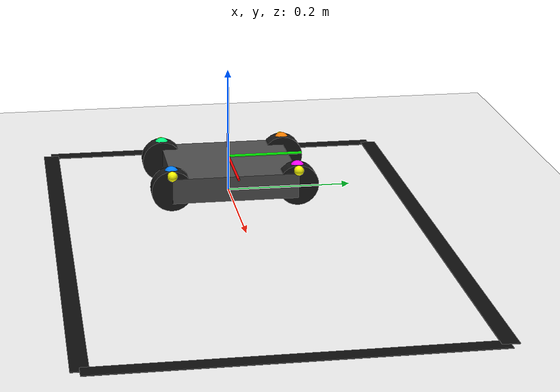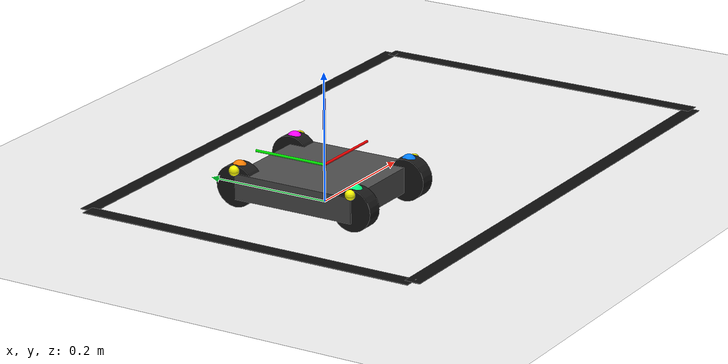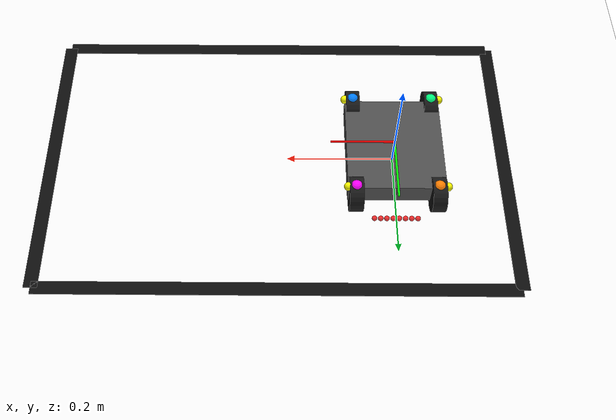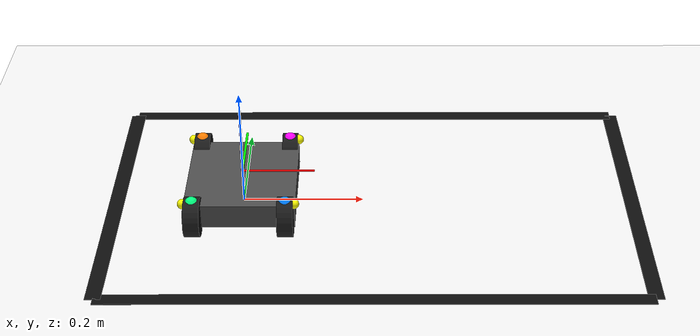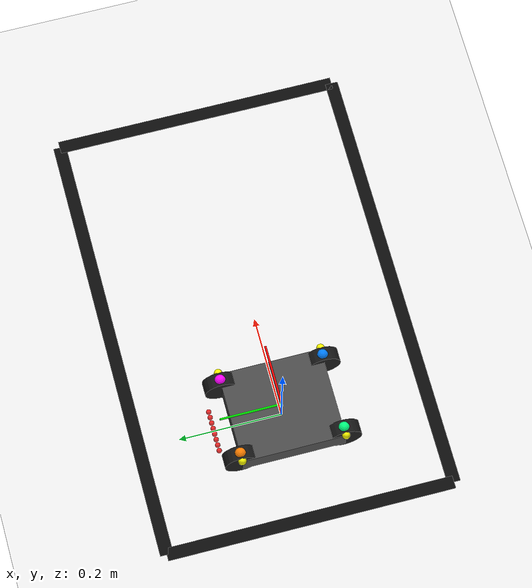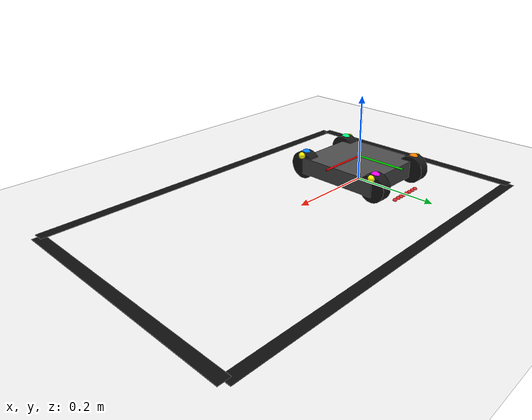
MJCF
<mujoco model="line_follower_simulation">
  <compiler angle="degree" coordinate="local" inertiafromgeom="true"/>

  <option timestep="0.002" integrator="implicitfast" gravity="0 0 -9.81" iterations="50" tolerance="1e-10">
    <flag warmstart="enable" contact="enable"/>
  </option>

  <default>
    <joint damping="0.5" armature="0.01"/>
    <geom contype="1" conaffinity="1" condim="3" solref="0.002 1" solimp="0.9 0.95 0.001"/>
  </default>

  <visual>
    <headlight diffuse="0.6 0.6 0.6" ambient="0.3 0.3 0.3" specular="0 0 0"/>
    <rgba haze="0.15 0.25 0.35 1"/>
    <global offwidth="640" offheight="480"/>
    <quality shadowsize="2048"/>
    <map fogstart="3" fogend="5" force="0.1"/>
  </visual>

  <asset>
    <texture name="grid" type="2d" builtin="checker" width="512" height="512"
             rgb1="0.2 0.2 0.2" rgb2="0.3 0.3 0.3"/>
    <material name="grid" texture="grid" texrepeat="1 1" texuniform="true"
              reflectance="0.1"/>
  </asset>

  <worldbody>
    <light directional="true" diffuse="0.8 0.8 0.8" specular="0.2 0.2 0.2"
           pos="0 0 5" dir="0 0 -1"/>
    <light directional="true" diffuse="0.4 0.4 0.4" specular="0.1 0.1 0.1"
           pos="2 2 3" dir="-1 -1 -1"/>
  </worldbody>

  <!-- Include track -->
  <include file="track.xml"/>

  <!-- Include robot -->
  <include file="robot.xml"/>
</mujoco>

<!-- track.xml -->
<mujoco model="track">
  <!--
  Black line track for differential drive robot
  Generated from waypoints - rectangular track with black tape
  Scale: 5x original size for robot compatibility
  -->

  <worldbody>
    <!-- Ground plane -->
    <geom name="floor" type="plane" size="1.5 1.5 0.1"
          rgba="0.95 0.95 0.95 1" friction="1.0 0.005 0.0001"/>

    <!-- Black track segments - scaled 5x -->
    <geom name="track_seg_0" type="box"
          pos="0.6505 0.0000 0.0005"
          size="0.2775 0.0125 0.0005"
          euler="0 0 90"
          rgba="0.05 0.05 0.05 1"/>
    <geom name="track_seg_1" type="box"
          pos="0.2190 0.2775 0.0005"
          size="0.4315 0.0125 0.0005"
          euler="0 0 180"
          rgba="0.05 0.05 0.05 1"/>
    <geom name="track_seg_2" type="box"
          pos="-0.2125 0.0000 0.0005"
          size="0.2775 0.0125 0.0005"
          euler="0 0 -90"
          rgba="0.05 0.05 0.05 1"/>
    <geom name="track_seg_3" type="box"
          pos="0.2190 -0.2775 0.0005"
          size="0.4315 0.0125 0.0005"
          euler="0 0 0"
          rgba="0.05 0.05 0.05 1"/>
  </worldbody>
</mujoco>

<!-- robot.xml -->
<mujoco model="differential_drive_robot">

  <worldbody>
    <!-- Chassis: position at z=0.0325 so chassis center is at wheel radius height -->
    <body name="chassis" pos="0 0 0.0325">
      <!-- Free joint - REQUIRED for robot to move -->
      <freejoint name="root"/>

      <!-- Main chassis box: 200mm x 180mm x 40mm, mass 380g -->
      <geom name="chassis_box" type="box" size="0.090 0.100 0.020"
            mass="0.380" rgba="0.3 0.3 0.3 1"/>

      <!-- Inertial properties -->
      <inertial pos="0 0 0" mass="0.380"
                diaginertia="8e-4 1.2e-3 1.5e-3"/>

      <!-- IR sensor sites: 8 channels, mounted at FRONT of robot -->
      <!-- User coordinates (mm): x=lateral, y=forward (132.1mm), relative to chassis center -->
      <!-- Robot frame: +Y is forward (vehicle heading direction) -->
      <!-- Conversion: user_x -> robot_x (lateral), user_y -> robot_y (forward) -->
      <site name="ir0" pos=" 0.0056944 0.1321 -0.0325" size="0.005" rgba="1 0 0 0.8"/>
      <site name="ir1" pos=" 0.0170831 0.1321 -0.0325" size="0.005" rgba="1 0 0 0.8"/>
      <site name="ir2" pos=" 0.0284719 0.1321 -0.0325" size="0.005" rgba="1 0 0 0.8"/>
      <site name="ir3" pos=" 0.0398606 0.1321 -0.0325" size="0.005" rgba="1 0 0 0.8"/>
      <site name="ir4" pos="-0.0056944 0.1321 -0.0325" size="0.005" rgba="1 0 0 0.8"/>
      <site name="ir5" pos="-0.0170831 0.1321 -0.0325" size="0.005" rgba="1 0 0 0.8"/>
      <site name="ir6" pos="-0.0284719 0.1321 -0.0325" size="0.005" rgba="1 0 0 0.8"/>
      <site name="ir7" pos="-0.0398606 0.1321 -0.0325" size="0.005" rgba="1 0 0 0.8"/>

      <!-- IMU site: at chassis center -->
      <site name="imu_site" pos="0 0 0" size="0.005" rgba="0 0 1 0.5"/>

      <!-- Chassis coordinate frame visualization - on top of chassis -->
      <!-- Chassis is 40mm tall (±20mm), so top surface is at z=0.020 -->
      <site name="chassis_x_axis" type="cylinder" size="0.002 0.06" pos="0.06 0 0.025" euler="0 90 0" rgba="1 0 0 0.9"/>
      <site name="chassis_y_axis" type="cylinder" size="0.002 0.06" pos="0 0.06 0.025" euler="90 0 0" rgba="0 1 0 0.9"/>
      <site name="chassis_z_axis" type="cylinder" size="0.002 0.06" pos="0 0 0.08" euler="0 0 0" rgba="0 0 1 0.9"/>

      <!-- Motor number labels near each wheel on chassis top surface -->
      <!-- M1 = wheel_lf (X=-0.075, Y=+0.100) - LEFT FRONT - orange -->
      <site name="label_m1" type="sphere" pos="-0.075 0.100 0.025" size="0.012" rgba="1 0.5 0 1"/>
      <!-- M2 = wheel_lr (X=-0.075, Y=-0.100) - LEFT REAR - cyan -->
      <site name="label_m2" type="sphere" pos="-0.075 -0.100 0.025" size="0.012" rgba="0 1 0.5 1"/>
      <!-- M3 = wheel_rf (X=+0.075, Y=-0.100) - RIGHT REAR - blue -->
      <site name="label_m3" type="sphere" pos="0.075 -0.100 0.025" size="0.012" rgba="0 0.5 1 1"/>
      <!-- M4 = wheel_rr (X=+0.075, Y=+0.100) - RIGHT FRONT - purple -->
      <site name="label_m4" type="sphere" pos="0.075 0.100 0.025" size="0.012" rgba="1 0 1 1"/>

      <!-- M1: LEFT front wheel - X=-0.075, Y=+0.100 -->
      <!-- axis=(-1,0,0): positive ω → rolls forward (+Y) -->
      <body name="wheel_lf" pos="-0.075 0.100 0">
        <joint name="jwheel_lf" type="hinge" axis="-1 0 0" damping="0.1"/>
        <geom name="wheel_lf" type="cylinder" size="0.0325 0.013"
              euler="0 90 0" mass="0.030" friction="1.5 0.005 0.0001"
              rgba="0.1 0.1 0.1 1"/>
        <inertial pos="0 0 0" mass="0.030" diaginertia="1.7e-5 3.3e-5 1.7e-5"/>
        <!-- Yellow marker on outer side of wheel (left side: -X direction) -->
        <site name="marker_lf" pos="-0.015 0 0.025" size="0.008" rgba="1 1 0 1"/>
      </body>

      <!-- M2: LEFT rear wheel - X=-0.075, Y=-0.100 -->
      <body name="wheel_lr" pos="-0.075 -0.100 0">
        <joint name="jwheel_lr" type="hinge" axis="-1 0 0" damping="0.1"/>
        <geom name="wheel_lr" type="cylinder" size="0.0325 0.013"
              euler="0 90 0" mass="0.030" friction="1.5 0.005 0.0001"
              rgba="0.1 0.1 0.1 1"/>
        <inertial pos="0 0 0" mass="0.030" diaginertia="1.7e-5 3.3e-5 1.7e-5"/>
        <site name="marker_lr" pos="-0.015 0 0.025" size="0.008" rgba="1 1 0 1"/>
      </body>

      <!-- M3: RIGHT rear wheel - X=+0.075, Y=-0.100 -->
      <!-- Right side: axis=(-1,0,0), positive ω → rolls forward (+Y) -->
      <body name="wheel_rf" pos="0.075 -0.100 0">
        <joint name="jwheel_rf" type="hinge" axis="-1 0 0" damping="0.1"/>
        <geom name="wheel_rf" type="cylinder" size="0.0325 0.013"
              euler="0 90 0" mass="0.030" friction="1.5 0.005 0.0001"
              rgba="0.1 0.1 0.1 1"/>
        <inertial pos="0 0 0" mass="0.030" diaginertia="1.7e-5 3.3e-5 1.7e-5"/>
        <!-- Yellow marker on outer side of wheel (right side: +X direction) -->
        <site name="marker_rf" pos="0.015 0 0.025" size="0.008" rgba="1 1 0 1"/>
      </body>

      <!-- M4: RIGHT front wheel - X=+0.075, Y=+0.100 -->
      <body name="wheel_rr" pos="0.075 0.100 0">
        <joint name="jwheel_rr" type="hinge" axis="-1 0 0" damping="0.1"/>
        <geom name="wheel_rr" type="cylinder" size="0.0325 0.013"
              euler="0 90 0" mass="0.030" friction="1.5 0.005 0.0001"
              rgba="0.1 0.1 0.1 1"/>
        <inertial pos="0 0 0" mass="0.030" diaginertia="1.7e-5 3.3e-5 1.7e-5"/>
        <site name="marker_rr" pos="0.015 0 0.025" size="0.008" rgba="1 1 0 1"/>
      </body>
    </body>
  </worldbody>

  <!-- Actuators: velocity control with reduced gain -->
  <actuator>
    <velocity name="act_lf" joint="jwheel_lf" kv="1" gear="1"/>
    <velocity name="act_lr" joint="jwheel_lr" kv="1" gear="1"/>
    <velocity name="act_rf" joint="jwheel_rf" kv="1" gear="1"/>
    <velocity name="act_rr" joint="jwheel_rr" kv="1" gear="1"/>
  </actuator>

  <!-- Sensors -->
  <sensor>
    <!-- Encoder: joint position for each wheel -->
    <jointpos name="enc_lf" joint="jwheel_lf"/>
    <jointpos name="enc_lr" joint="jwheel_lr"/>
    <jointpos name="enc_rf" joint="jwheel_rf"/>
    <jointpos name="enc_rr" joint="jwheel_rr"/>

    <!-- IMU: linear and angular velocity in chassis frame -->
    <framelinvel  name="imu_linvel"  objtype="site" objname="imu_site"/>
    <frameangvel  name="imu_angvel"  objtype="site" objname="imu_site"/>

    <!-- Debug sensors: chassis pose -->
    <framepos     name="chassis_pos" objtype="body" objname="chassis"/>
    <framequat    name="chassis_quat" objtype="body" objname="chassis"/>
  </sensor>
</mujoco>
